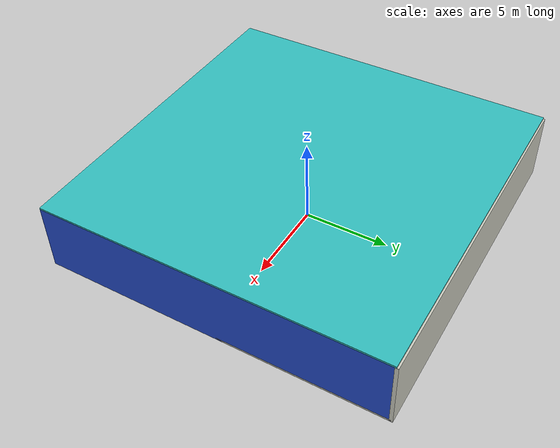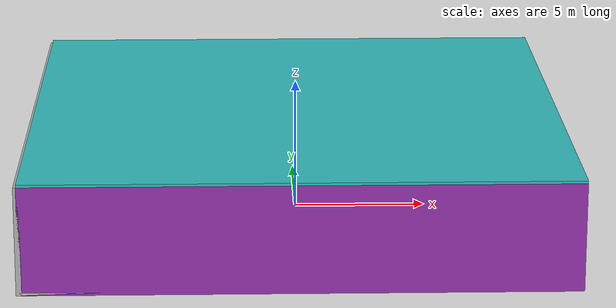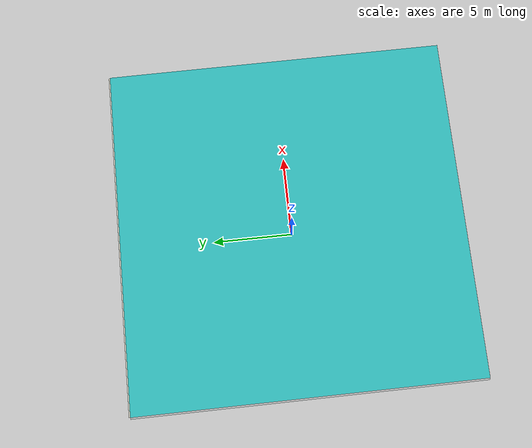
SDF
<sdf version="1.4">
 <world name="default">
  <physics type="ode">
   <max_step_size>0.001</max_step_size>
   <real_time_factor>1</real_time_factor>
   <real_time_update_rate>1000</real_time_update_rate>
   <gravity>0 0 -9.8</gravity>
  </physics>
  <scene><ambient>0.4 0.4 0.4 1</ambient><background>0.7 0.7 0.7 1</background><shadows>1</shadows></scene>
  <model name="Surrounding">
   <static>1</static>
   <link name="Ceiling">
    <collision name="Ceiling_Collision"><geometry><box><size>20 20 0.1</size></box></geometry></collision>
    <visual name="Ceiling_Visual">
     <geometry><box><size>20 20 0.1</size></box></geometry>
     <material>
      <script><uri>file://media/materials/scripts/gazebo.material</uri><name>Gazebo/Turquoise</name></script>
     </material>
    </visual>
    <pose>0 0 4.05 0 0 0</pose>
   </link>
   <link name="Wall_South">
    <collision name="Wall_South_Collision">
     <geometry><box><size>20 0 4</size></box></geometry>
     <pose>0 0 2 0 -0 0</pose>
    </collision>
    <visual name="Wall_South_Visual">
     <pose>0 0 2 0 -0 0</pose>
     <geometry><box><size>20 0 4</size></box></geometry>
     <material>
      <script><uri>file://media/materials/scripts/gazebo.material</uri><name>Gazebo/PurpleGlow</name></script>
     </material>
    </visual>
    <velocity_decay><linear>0</linear><angular>0</angular></velocity_decay>
    <pose>0 -10 0 0 -0 0</pose>
   </link>
   <link name="Wall_East">
    <collision name="Wall_21_Collision">
     <geometry><box><size>20 0 4</size></box></geometry>
     <pose>0 0 2 0 -0 0</pose>
    </collision>
    <visual name="Wall_21_Visual">
     <pose>0 0 2 0 -0 0</pose>
     <geometry><box><size>20 0 4</size></box></geometry>
     <material>
      <script><uri>file://media/materials/scripts/gazebo.material</uri><name>Gazebo/BlueGlow</name></script>
     </material>
    </visual>
    <velocity_decay><linear>0</linear><angular>0</angular></velocity_decay>
    <pose>10 0 0 0 -0 1.5708</pose>
   </link>
   <link name="Wall_North">
    <collision name="Wall_22_Collision">
     <geometry><box><size>20 0.2 4</size></box></geometry>
     <pose>0 0 2 0 -0 0</pose>
    </collision>
    <visual name="Wall_22_Visual">
     <pose>0 0 2 0 -0 0</pose>
     <geometry><box><size>20 0.2 4</size></box></geometry>
     <material>
      <script><uri>file://media/materials/scripts/gazebo.material</uri><name>Gazebo/PaintedWall</name></script>
     </material>
    </visual>
    <velocity_decay><linear>0</linear><angular>0</angular></velocity_decay>
    <pose>0 10 0 0 -0 0</pose>
   </link>
   <link name="Wall_West">
    <collision name="Wall_23_Collision">
     <geometry><box><size>20 0.2 4</size></box></geometry>
     <pose>0 0 2 0 -0 0</pose>
    </collision>
    <visual name="Wall_23_Visual">
     <pose>0 0 2 0 -0 0</pose>
     <geometry><box><size>20 0.2 4</size></box></geometry>
     <material>
      <script><uri>file://media/materials/scripts/gazebo.material</uri><name>Gazebo/PioneerBody</name></script>
     </material>
    </visual>
    <velocity_decay><linear>0</linear><angular>0</angular></velocity_decay>
    <pose>-10 0 0 0 0 -1.5708</pose>
   </link>
   <link name="Ground_link">
    <collision name="collision">
     <pose>0 0 .05 0 -0 0</pose>
     <geometry><box><size>20 20 0.1</size></box></geometry>
    </collision>
    <visual name="visual">
     <pose>0 0 .05 0 -0 0</pose>
     <geometry><box><size>20 20 0.1</size></box></geometry>
     <material>
      <script><uri>file://media/materials/scripts/gazebo.material</uri><name>Gazebo/PaintedWall</name></script>
     </material>
    </visual>
   </link>
   <static>1</static>
  </model>
  <spherical_coordinates>
   <surface_model>EARTH_WGS84</surface_model>
   <latitude_deg>0</latitude_deg>
   <longitude_deg>0</longitude_deg>
   <elevation>0</elevation>
   <heading_deg>0</heading_deg>
  </spherical_coordinates>
  <light name="lightball_0" type="diffuse">
   <diffuse>0.8 0.8 0.8 1</diffuse>
   <specular>0.2 0.2 0.2 1</specular>
   <attenuation>
    <range>100</range>
    <constant>0.7</constant>
    <linear>0.01</linear>
    <quadratic>0.001</quadratic>
   </attenuation>
   <direction>-0.5 0.1 -0.9</direction>
   <pose>-2.98782204227 -1.44215962633 2.39283351284 0 0 0</pose>
  </light>
  <light name="lightball_1" type="diffuse">
   <diffuse>0.8 0.8 0.8 1</diffuse>
   <specular>0.2 0.2 0.2 1</specular>
   <attenuation>
    <range>100</range>
    <constant>0.7</constant>
    <linear>0.01</linear>
    <quadratic>0.001</quadratic>
   </attenuation>
   <direction>-0.5 0.1 -0.9</direction>
   <pose>-1.00181987607 -5.34426745309 0.549782350342 0 0 0</pose>
  </light>
  <light name="lightball_2" type="diffuse">
   <diffuse>0.8 0.8 0.8 1</diffuse>
   <specular>0.2 0.2 0.2 1</specular>
   <attenuation>
    <range>100</range>
    <constant>0.7</constant>
    <linear>0.01</linear>
    <quadratic>0.001</quadratic>
   </attenuation>
   <direction>-0.5 0.1 -0.9</direction>
   <pose>0.250139739018 -0.429770959793 3.82201586362 0 0 0</pose>
  </light>
  <include>
   <uri>model://textured_shapes</uri>
   <pose>-4.29565716843 -2.02882904778 0 0 0 2.02905018424</pose>
  </include>
  <include><uri>model://table</uri><pose>4.06793577758 -8.03469748062 0 0 0 0.485533353636</pose></include>
  <include><uri>model://table</uri><pose>6.75943211158 4.1456783867 0 0 0 1.97629413596</pose></include>
 </world>
</sdf>

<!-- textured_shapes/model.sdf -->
<sdf version="1.6">
  <model name="textured_shapes">
    <pose>0 0 0.5 0 0 0</pose>
    <link name="box">
      <pose>0 -1.5 0 0 0 0</pose>
      <collision name="collision">
        <geometry>
          <box>
            <size>1 1 1</size>
          </box>
        </geometry>
      </collision>
      <visual name="visual">
        <geometry>
          <box>
            <size>1 1 1</size>
          </box>
        </geometry>
        <material>
          <script>
            <uri>model://../model_source/models/textured_shapes/materials/scripts</uri>
            <uri>model://../model_source/models/textured_shapes/materials/textures</uri>
            <name>TexturedShape/Squares</name>
          </script>
        </material>
      </visual>
    </link>
    <link name="sphere">
      <collision name="collision">
        <geometry>
          <sphere>
            <radius>0.5</radius>
          </sphere>
        </geometry>
      </collision>
      <visual name="visual">
        <geometry>
          <sphere>
            <radius>0.5</radius>
          </sphere>
        </geometry>
        <material>
          <script>
            <uri>model://../model_source/models/textured_shapes/materials/scripts</uri>
            <uri>model://../model_source/models/textured_shapes/materials/textures</uri>
            <name>TexturedShape/Squares</name>
          </script>
        </material>
      </visual>
    </link>
    <link name="cylinder">
      <pose>0 1.5 0 0 0 0</pose>
      <collision name="collision">
        <geometry>
          <cylinder>
            <radius>0.5</radius>
            <length>1</length>
          </cylinder>
        </geometry>
      </collision>
      <visual name="visual">
        <geometry>
          <cylinder>
            <radius>0.5</radius>
            <length>1</length>
          </cylinder>
        </geometry>
        <material>
          <script>
            <uri>model://../model_source/models/textured_shapes/materials/scripts</uri>
            <uri>model://../model_source/models/textured_shapes/materials/textures</uri>
            <name>TexturedShape/Squares</name>
          </script>
        </material>
      </visual>
    </link>
  </model>
</sdf>

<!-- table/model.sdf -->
<sdf version="1.5">
  <model name="table">
    <static>true</static>
    <link name="link">
      <collision name="surface">
        <pose>0 0 1.0 0 0 0</pose>
        <geometry>
          <box>
            <size>1.5 0.8 0.03</size>
          </box>
        </geometry>
        <surface>
          <friction>
            <ode>
              <mu>0.6</mu>
              <mu2>0.6</mu2>
            </ode>
          </friction>
        </surface>
      </collision>
      <visual name="visual1">
        <pose>0 0 1.0 0 0 0</pose>
        <geometry>
          <box>
            <size>1.5 0.8 0.03</size>
          </box>
        </geometry>
        <material>
          <script>
            <uri>model://media/materials/scripts/gazebo.material</uri>
            <name>Gazebo/Wood</name>
          </script>
        </material>
      </visual>
      <collision name="front_left_leg">
        <pose>0.68 0.38 0.5 0 0 0</pose>
        <geometry>
          <cylinder>
            <radius>0.02</radius>
            <length>1.0</length>
          </cylinder>
        </geometry>
      </collision>
      <visual name="front_left_leg">
        <pose>0.68 0.38 0.5 0 0 0</pose>
        <geometry>
          <cylinder>
            <radius>0.02</radius>
            <length>1.0</length>
          </cylinder>
        </geometry>
        <material>
          <script>
            <uri>model://media/materials/scripts/gazebo.material</uri>
            <name>Gazebo/Grey</name>
          </script>
        </material>
      </visual>
      <collision name="front_right_leg">
        <pose>0.68 -0.38 0.5 0 0 0</pose>
        <geometry>
          <cylinder>
            <radius>0.02</radius>
            <length>1.0</length>
          </cylinder>
        </geometry>
      </collision>
      <visual name="front_right_leg">
        <pose>0.68 -0.38 0.5 0 0 0</pose>
        <geometry>
          <cylinder>
            <radius>0.02</radius>
            <length>1.0</length>
          </cylinder>
        </geometry>
        <material>
          <script>
            <uri>model://media/materials/scripts/gazebo.material</uri>
            <name>Gazebo/Grey</name>
          </script>
        </material>
      </visual>
      <collision name="back_right_leg">
        <pose>-0.68 -0.38 0.5 0 0 0</pose>
        <geometry>
          <cylinder>
            <radius>0.02</radius>
            <length>1.0</length>
          </cylinder>
        </geometry>
      </collision>
      <visual name="back_right_leg">
        <pose>-0.68 -0.38 0.5 0 0 0</pose>
        <geometry>
          <cylinder>
            <radius>0.02</radius>
            <length>1.0</length>
          </cylinder>
        </geometry>
        <material>
          <script>
            <uri>model://media/materials/scripts/gazebo.material</uri>
            <name>Gazebo/Grey</name>
          </script>
        </material>
      </visual>
      <collision name="back_left_leg">
        <pose>-0.68 0.38 0.5 0 0 0</pose>
        <geometry>
          <cylinder>
            <radius>0.02</radius>
            <length>1.0</length>
          </cylinder>
        </geometry>
      </collision>
      <visual name="back_left_leg">
        <pose>-0.68 0.38 0.5 0 0 0</pose>
        <geometry>
          <cylinder>
            <radius>0.02</radius>
            <length>1.0</length>
          </cylinder>
        </geometry>
        <material>
          <script>
            <uri>model://media/materials/scripts/gazebo.material</uri>
            <name>Gazebo/Grey</name>
          </script>
        </material>
      </visual>
    </link>
  </model>
</sdf>
